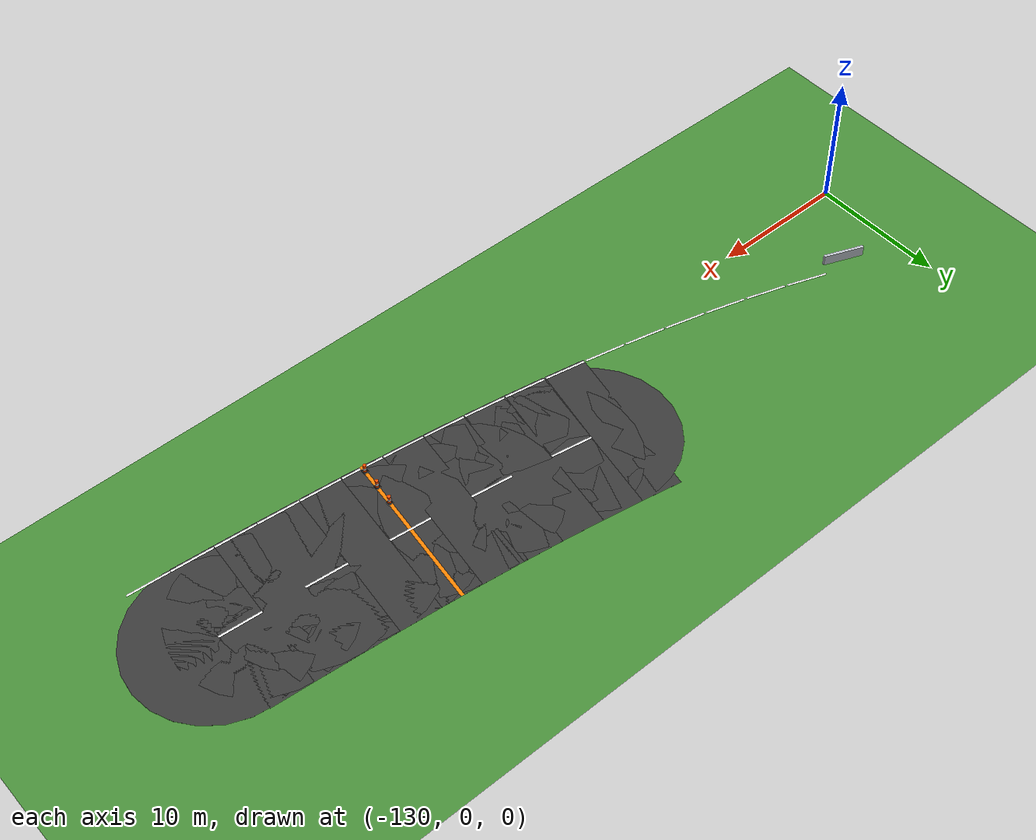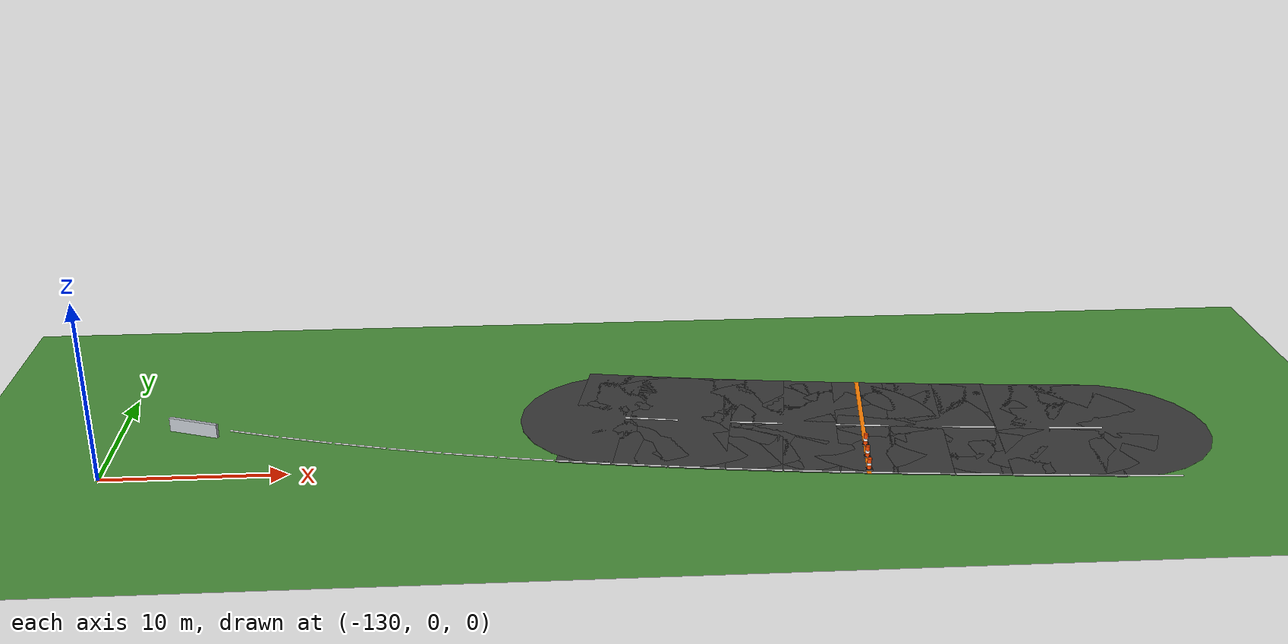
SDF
<sdf version="1.6">
 <world name="sem_silesia_ring_2026">
  <model name="ground_plane">
   <static>true</static>
   <link name="link">
    <collision name="collision">
     <geometry><plane><normal>0 0 1</normal><size>1200 1200</size></plane></geometry>
     <surface><friction><ode><mu>0.6</mu><mu2>0.6</mu2></ode></friction></surface>
    </collision>
    <visual name="visual">
     <geometry><plane><normal>0 0 1</normal><size>1200 1200</size></plane></geometry>
     <material><ambient>0.28 0.55 0.22 1</ambient><diffuse>0.28 0.55 0.22 1</diffuse></material>
    </visual>
   </link>
  </model>
  <model name="arm_outR_398">
   <static>true</static>
   <pose>-125.9399 5.4212 0.4000 0 0 -0.3780</pose>
   <link name="link">
    <visual name="v">
     <geometry><box><size>3.0023 0.2000 0.8000</size></box></geometry>
     <material><ambient>0.75 0.77 0.80 1</ambient><diffuse>0.75 0.77 0.80 1</diffuse></material>
    </visual>
    <collision name="c">
     <geometry><box><size>3.0023 0.2000 0.8000</size></box></geometry>
     <surface><friction><ode><mu>0.8</mu><mu2>0.8</mu2></ode></friction></surface>
    </collision>
   </link>
  </model>
  <model name="wl_R_s399">
   <static>true</static>
   <pose>-122.5764 5.1720 0.0070 0 0 -0.3409</pose>
   <link name="link">
    <visual name="v">
     <geometry><box><size>3.0024 0.1500 0.0080</size></box></geometry>
     <material><ambient>0.95 0.95 0.95 1</ambient><diffuse>0.95 0.95 0.95 1</diffuse></material>
    </visual>
   </link>
  </model>
  <model name="wl_R_s400">
   <static>true</static>
   <pose>-119.5448 4.1534 0.0070 0 0 -0.3074</pose>
   <link name="link">
    <visual name="v">
     <geometry><box><size>3.0024 0.1500 0.0080</size></box></geometry>
     <material><ambient>0.95 0.95 0.95 1</ambient><diffuse>0.95 0.95 0.95 1</diffuse></material>
    </visual>
   </link>
  </model>
  <model name="wl_R_s401">
   <static>true</static>
   <pose>-116.5007 3.2375 0.0070 0 0 -0.2771</pose>
   <link name="link">
    <visual name="v">
     <geometry><box><size>3.0024 0.1500 0.0080</size></box></geometry>
     <material><ambient>0.95 0.95 0.95 1</ambient><diffuse>0.95 0.95 0.95 1</diffuse></material>
    </visual>
   </link>
  </model>
  <model name="wl_R_s402">
   <static>true</static>
   <pose>-113.4487 2.4140 0.0070 0 0 -0.2500</pose>
   <link name="link">
    <visual name="v">
     <geometry><box><size>3.0025 0.1500 0.0080</size></box></geometry>
     <material><ambient>0.95 0.95 0.95 1</ambient><diffuse>0.95 0.95 0.95 1</diffuse></material>
    </visual>
   </link>
  </model>
  <model name="wl_R_s403">
   <static>true</static>
   <pose>-110.3926 1.6732 0.0070 0 0 -0.2256</pose>
   <link name="link">
    <visual name="v">
     <geometry><box><size>3.0025 0.1500 0.0080</size></box></geometry>
     <material><ambient>0.95 0.95 0.95 1</ambient><diffuse>0.95 0.95 0.95 1</diffuse></material>
    </visual>
   </link>
  </model>
  <model name="wl_R_s404">
   <static>true</static>
   <pose>-107.3355 1.0063 0.0070 0 0 -0.2040</pose>
   <link name="link">
    <visual name="v">
     <geometry><box><size>3.0025 0.1500 0.0080</size></box></geometry>
     <material><ambient>0.95 0.95 0.95 1</ambient><diffuse>0.95 0.95 0.95 1</diffuse></material>
    </visual>
   </link>
  </model>
  <model name="road_s405">
   <static>true</static>
   <pose>-103.2047 6.1550 0.0030 0 0 -0.1848</pose>
   <link name="link">
    <visual name="v">
     <geometry><box><size>3.0025 12.0000 0.0060</size></box></geometry>
     <material><ambient>0.22 0.22 0.22 1</ambient><diffuse>0.22 0.22 0.22 1</diffuse></material>
    </visual>
    <collision name="c">
     <geometry><box><size>3.0025 12.0000 0.0060</size></box></geometry>
     <surface><friction><ode><mu>0.9</mu><mu2>0.9</mu2></ode></friction></surface>
    </collision>
   </link>
  </model>
  <model name="wl_R_s405">
   <static>true</static>
   <pose>-104.2797 0.4047 0.0070 0 0 -0.1848</pose>
   <link name="link">
    <visual name="v">
     <geometry><box><size>3.0025 0.1500 0.0080</size></box></geometry>
     <material><ambient>0.95 0.95 0.95 1</ambient><diffuse>0.95 0.95 0.95 1</diffuse></material>
    </visual>
   </link>
  </model>
  <model name="road_s406">
   <static>true</static>
   <pose>-100.2488 5.6289 0.0030 0 0 -0.1675</pose>
   <link name="link">
    <visual name="v">
     <geometry><box><size>3.0025 12.0000 0.0060</size></box></geometry>
     <material><ambient>0.22 0.22 0.22 1</ambient><diffuse>0.22 0.22 0.22 1</diffuse></material>
    </visual>
    <collision name="c">
     <geometry><box><size>3.0025 12.0000 0.0060</size></box></geometry>
     <surface><friction><ode><mu>0.9</mu><mu2>0.9</mu2></ode></friction></surface>
    </collision>
   </link>
  </model>
  <model name="road_jnt406">
   <static>true</static>
   <pose>-101.7290 5.8792 0.0030 0 0 0</pose>
   <link name="link">
    <visual name="v">
     <geometry><cylinder><radius>6.0000</radius><length>0.0060</length></cylinder></geometry>
     <material><ambient>0.22 0.22 0.22 1</ambient><diffuse>0.22 0.22 0.22 1</diffuse></material>
    </visual>
    <collision name="c">
     <geometry><cylinder><radius>6.0000</radius><length>0.0060</length></cylinder></geometry>
     <surface><friction><ode><mu>0.9</mu><mu2>0.9</mu2></ode></friction></surface>
    </collision>
   </link>
  </model>
  <model name="wl_R_s406">
   <static>true</static>
   <pose>-101.2239 -0.1392 0.0070 0 0 -0.1675</pose>
   <link name="link">
    <visual name="v">
     <geometry><box><size>3.0025 0.1500 0.0080</size></box></geometry>
     <material><ambient>0.95 0.95 0.95 1</ambient><diffuse>0.95 0.95 0.95 1</diffuse></material>
    </visual>
   </link>
  </model>
  <model name="cd_s406">
   <static>true</static>
   <pose>-100.2488 5.6289 0.0070 0 0 -0.1675</pose>
   <link name="link">
    <visual name="v">
     <geometry><box><size>3.0025 0.1500 0.0080</size></box></geometry>
     <material><ambient>0.95 0.95 0.95 1</ambient><diffuse>0.95 0.95 0.95 1</diffuse></material>
    </visual>
   </link>
  </model>
  <model name="road_s407">
   <static>true</static>
   <pose>-97.2845 5.1521 0.0030 0 0 -0.1515</pose>
   <link name="link">
    <visual name="v">
     <geometry><box><size>3.0025 12.0000 0.0060</size></box></geometry>
     <material><ambient>0.22 0.22 0.22 1</ambient><diffuse>0.22 0.22 0.22 1</diffuse></material>
    </visual>
    <collision name="c">
     <geometry><box><size>3.0025 12.0000 0.0060</size></box></geometry>
     <surface><friction><ode><mu>0.9</mu><mu2>0.9</mu2></ode></friction></surface>
    </collision>
   </link>
  </model>
  <model name="road_jnt407">
   <static>true</static>
   <pose>-98.7685 5.3787 0.0030 0 0 0</pose>
   <link name="link">
    <visual name="v">
     <geometry><cylinder><radius>6.0000</radius><length>0.0060</length></cylinder></geometry>
     <material><ambient>0.22 0.22 0.22 1</ambient><diffuse>0.22 0.22 0.22 1</diffuse></material>
    </visual>
    <collision name="c">
     <geometry><cylinder><radius>6.0000</radius><length>0.0060</length></cylinder></geometry>
     <surface><friction><ode><mu>0.9</mu><mu2>0.9</mu2></ode></friction></surface>
    </collision>
   </link>
  </model>
  <model name="wl_R_s407">
   <static>true</static>
   <pose>-98.1673 -0.6309 0.0070 0 0 -0.1515</pose>
   <link name="link">
    <visual name="v">
     <geometry><box><size>3.0025 0.1500 0.0080</size></box></geometry>
     <material><ambient>0.95 0.95 0.95 1</ambient><diffuse>0.95 0.95 0.95 1</diffuse></material>
    </visual>
   </link>
  </model>
  <model name="road_s408">
   <static>true</static>
   <pose>-94.3132 4.7207 0.0030 0 0 -0.1369</pose>
   <link name="link">
    <visual name="v">
     <geometry><box><size>3.0025 12.0000 0.0060</size></box></geometry>
     <material><ambient>0.22 0.22 0.22 1</ambient><diffuse>0.22 0.22 0.22 1</diffuse></material>
    </visual>
    <collision name="c">
     <geometry><box><size>3.0025 12.0000 0.0060</size></box></geometry>
     <surface><friction><ode><mu>0.9</mu><mu2>0.9</mu2></ode></friction></surface>
    </collision>
   </link>
  </model>
  <model name="road_jnt408">
   <static>true</static>
   <pose>-95.8004 4.9256 0.0030 0 0 0</pose>
   <link name="link">
    <visual name="v">
     <geometry><cylinder><radius>6.0000</radius><length>0.0060</length></cylinder></geometry>
     <material><ambient>0.22 0.22 0.22 1</ambient><diffuse>0.22 0.22 0.22 1</diffuse></material>
    </visual>
    <collision name="c">
     <geometry><cylinder><radius>6.0000</radius><length>0.0060</length></cylinder></geometry>
     <surface><friction><ode><mu>0.9</mu><mu2>0.9</mu2></ode></friction></surface>
    </collision>
   </link>
  </model>
  <model name="wl_R_s408">
   <static>true</static>
   <pose>-95.1114 -1.0746 0.0070 0 0 -0.1369</pose>
   <link name="link">
    <visual name="v">
     <geometry><box><size>3.0025 0.1500 0.0080</size></box></geometry>
     <material><ambient>0.95 0.95 0.95 1</ambient><diffuse>0.95 0.95 0.95 1</diffuse></material>
    </visual>
   </link>
  </model>
  <model name="cd_s408">
   <static>true</static>
   <pose>-94.3132 4.7207 0.0070 0 0 -0.1369</pose>
   <link name="link">
    <visual name="v">
     <geometry><box><size>3.0025 0.1500 0.0080</size></box></geometry>
     <material><ambient>0.95 0.95 0.95 1</ambient><diffuse>0.95 0.95 0.95 1</diffuse></material>
    </visual>
   </link>
  </model>
  <model name="road_s409">
   <static>true</static>
   <pose>-91.3362 4.3306 0.0030 0 0 -0.1237</pose>
   <link name="link">
    <visual name="v">
     <geometry><box><size>3.0025 12.0000 0.0060</size></box></geometry>
     <material><ambient>0.22 0.22 0.22 1</ambient><diffuse>0.22 0.22 0.22 1</diffuse></material>
    </visual>
    <collision name="c">
     <geometry><box><size>3.0025 12.0000 0.0060</size></box></geometry>
     <surface><friction><ode><mu>0.9</mu><mu2>0.9</mu2></ode></friction></surface>
    </collision>
   </link>
  </model>
  <model name="road_jnt409">
   <static>true</static>
   <pose>-92.8260 4.5159 0.0030 0 0 0</pose>
   <link name="link">
    <visual name="v">
     <geometry><cylinder><radius>6.0000</radius><length>0.0060</length></cylinder></geometry>
     <material><ambient>0.22 0.22 0.22 1</ambient><diffuse>0.22 0.22 0.22 1</diffuse></material>
    </visual>
    <collision name="c">
     <geometry><cylinder><radius>6.0000</radius><length>0.0060</length></cylinder></geometry>
     <surface><friction><ode><mu>0.9</mu><mu2>0.9</mu2></ode></friction></surface>
    </collision>
   </link>
  </model>
  <model name="wl_R_s409">
   <static>true</static>
   <pose>-92.0580 -1.4747 0.0070 0 0 -0.1237</pose>
   <link name="link">
    <visual name="v">
     <geometry><box><size>3.0025 0.1500 0.0080</size></box></geometry>
     <material><ambient>0.95 0.95 0.95 1</ambient><diffuse>0.95 0.95 0.95 1</diffuse></material>
    </visual>
   </link>
  </model>
  <model name="road_s410">
   <static>true</static>
   <pose>-88.3545 3.9776 0.0030 0 0 -0.1120</pose>
   <link name="link">
    <visual name="v">
     <geometry><box><size>3.0025 12.0000 0.0060</size></box></geometry>
     <material><ambient>0.22 0.22 0.22 1</ambient><diffuse>0.22 0.22 0.22 1</diffuse></material>
    </visual>
    <collision name="c">
     <geometry><box><size>3.0025 12.0000 0.0060</size></box></geometry>
     <surface><friction><ode><mu>0.9</mu><mu2>0.9</mu2></ode></friction></surface>
    </collision>
   </link>
  </model>
  <model name="road_jnt410">
   <static>true</static>
   <pose>-89.8464 4.1454 0.0030 0 0 0</pose>
   <link name="link">
    <visual name="v">
     <geometry><cylinder><radius>6.0000</radius><length>0.0060</length></cylinder></geometry>
     <material><ambient>0.22 0.22 0.22 1</ambient><diffuse>0.22 0.22 0.22 1</diffuse></material>
    </visual>
    <collision name="c">
     <geometry><cylinder><radius>6.0000</radius><length>0.0060</length></cylinder></geometry>
     <surface><friction><ode><mu>0.9</mu><mu2>0.9</mu2></ode></friction></surface>
    </collision>
   </link>
  </model>
  <model name="wl_R_s410">
   <static>true</static>
   <pose>-89.0086 -1.8358 0.0070 0 0 -0.1120</pose>
   <link name="link">
    <visual name="v">
     <geometry><box><size>3.0025 0.1500 0.0080</size></box></geometry>
     <material><ambient>0.95 0.95 0.95 1</ambient><diffuse>0.95 0.95 0.95 1</diffuse></material>
    </visual>
   </link>
  </model>
  <model name="cd_s410">
   <static>true</static>
   <pose>-88.3545 3.9776 0.0070 0 0 -0.1120</pose>
   <link name="link">
    <visual name="v">
     <geometry><box><size>3.0025 0.1500 0.0080</size></box></geometry>
     <material><ambient>0.95 0.95 0.95 1</ambient><diffuse>0.95 0.95 0.95 1</diffuse></material>
    </visual>
   </link>
  </model>
  <model name="road_s411">
   <static>true</static>
   <pose>-85.3692 3.6570 0.0030 0 0 -0.1019</pose>
   <link name="link">
    <visual name="v">
     <geometry><box><size>3.0025 12.0000 0.0060</size></box></geometry>
     <material><ambient>0.22 0.22 0.22 1</ambient><diffuse>0.22 0.22 0.22 1</diffuse></material>
    </visual>
    <collision name="c">
     <geometry><box><size>3.0025 12.0000 0.0060</size></box></geometry>
     <surface><friction><ode><mu>0.9</mu><mu2>0.9</mu2></ode></friction></surface>
    </collision>
   </link>
  </model>
  <model name="road_jnt411">
   <static>true</static>
   <pose>-86.8627 3.8097 0.0030 0 0 0</pose>
   <link name="link">
    <visual name="v">
     <geometry><cylinder><radius>6.0000</radius><length>0.0060</length></cylinder></geometry>
     <material><ambient>0.22 0.22 0.22 1</ambient><diffuse>0.22 0.22 0.22 1</diffuse></material>
    </visual>
    <collision name="c">
     <geometry><cylinder><radius>6.0000</radius><length>0.0060</length></cylinder></geometry>
     <surface><friction><ode><mu>0.9</mu><mu2>0.9</mu2></ode></friction></surface>
    </collision>
   </link>
  </model>
  <model name="wl_R_s411">
   <static>true</static>
   <pose>-85.9642 -2.1626 0.0070 0 0 -0.1019</pose>
   <link name="link">
    <visual name="v">
     <geometry><box><size>3.0025 0.1500 0.0080</size></box></geometry>
     <material><ambient>0.95 0.95 0.95 1</ambient><diffuse>0.95 0.95 0.95 1</diffuse></material>
    </visual>
   </link>
  </model>
  <model name="road_s412">
   <static>true</static>
   <pose>-82.3810 3.3645 0.0030 0 0 -0.0933</pose>
   <link name="link">
    <visual name="v">
     <geometry><box><size>3.0025 12.0000 0.0060</size></box></geometry>
     <material><ambient>0.22 0.22 0.22 1</ambient><diffuse>0.22 0.22 0.22 1</diffuse></material>
    </visual>
    <collision name="c">
     <geometry><box><size>3.0025 12.0000 0.0060</size></box></geometry>
     <surface><friction><ode><mu>0.9</mu><mu2>0.9</mu2></ode></friction></surface>
    </collision>
   </link>
  </model>
  <model name="road_jnt412">
   <static>true</static>
   <pose>-83.8757 3.5043 0.0030 0 0 0</pose>
   <link name="link">
    <visual name="v">
     <geometry><cylinder><radius>6.0000</radius><length>0.0060</length></cylinder></geometry>
     <material><ambient>0.22 0.22 0.22 1</ambient><diffuse>0.22 0.22 0.22 1</diffuse></material>
    </visual>
    <collision name="c">
     <geometry><cylinder><radius>6.0000</radius><length>0.0060</length></cylinder></geometry>
     <surface><friction><ode><mu>0.9</mu><mu2>0.9</mu2></ode></friction></surface>
    </collision>
   </link>
  </model>
  <model name="wl_R_s412">
   <static>true</static>
   <pose>-82.9259 -2.4601 0.0070 0 0 -0.0933</pose>
   <link name="link">
    <visual name="v">
     <geometry><box><size>3.0025 0.1500 0.0080</size></box></geometry>
     <material><ambient>0.95 0.95 0.95 1</ambient><diffuse>0.95 0.95 0.95 1</diffuse></material>
    </visual>
   </link>
  </model>
  <model name="cd_s412">
   <static>true</static>
   <pose>-82.3810 3.3645 0.0070 0 0 -0.0933</pose>
   <link name="link">
    <visual name="v">
     <geometry><box><size>3.0025 0.1500 0.0080</size></box></geometry>
     <material><ambient>0.95 0.95 0.95 1</ambient><diffuse>0.95 0.95 0.95 1</diffuse></material>
    </visual>
   </link>
  </model>
  <model name="road_s413">
   <static>true</static>
   <pose>-79.3906 3.0953 0.0030 0 0 -0.0863</pose>
   <link name="link">
    <visual name="v">
     <geometry><box><size>3.0025 12.0000 0.0060</size></box></geometry>
     <material><ambient>0.22 0.22 0.22 1</ambient><diffuse>0.22 0.22 0.22 1</diffuse></material>
    </visual>
    <collision name="c">
     <geometry><box><size>3.0025 12.0000 0.0060</size></box></geometry>
     <surface><friction><ode><mu>0.9</mu><mu2>0.9</mu2></ode></friction></surface>
    </collision>
   </link>
  </model>
  <model name="road_jnt413">
   <static>true</static>
   <pose>-80.8863 3.2247 0.0030 0 0 0</pose>
   <link name="link">
    <visual name="v">
     <geometry><cylinder><radius>6.0000</radius><length>0.0060</length></cylinder></geometry>
     <material><ambient>0.22 0.22 0.22 1</ambient><diffuse>0.22 0.22 0.22 1</diffuse></material>
    </visual>
    <collision name="c">
     <geometry><cylinder><radius>6.0000</radius><length>0.0060</length></cylinder></geometry>
     <surface><friction><ode><mu>0.9</mu><mu2>0.9</mu2></ode></friction></surface>
    </collision>
   </link>
  </model>
  <model name="wl_R_s413">
   <static>true</static>
   <pose>-79.8947 -2.7330 0.0070 0 0 -0.0863</pose>
   <link name="link">
    <visual name="v">
     <geometry><box><size>3.0025 0.1500 0.0080</size></box></geometry>
     <material><ambient>0.95 0.95 0.95 1</ambient><diffuse>0.95 0.95 0.95 1</diffuse></material>
    </visual>
   </link>
  </model>
  <model name="road_s414">
   <static>true</static>
   <pose>-76.3985 2.8447 0.0030 0 0 -0.0809</pose>
   <link name="link">
    <visual name="v">
     <geometry><box><size>3.0025 12.0000 0.0060</size></box></geometry>
     <material><ambient>0.22 0.22 0.22 1</ambient><diffuse>0.22 0.22 0.22 1</diffuse></material>
    </visual>
    <collision name="c">
     <geometry><box><size>3.0025 12.0000 0.0060</size></box></geometry>
     <surface><friction><ode><mu>0.9</mu><mu2>0.9</mu2></ode></friction></surface>
    </collision>
   </link>
  </model>
  <model name="road_jnt414">
   <static>true</static>
   <pose>-77.8949 2.9659 0.0030 0 0 0</pose>
   <link name="link">
    <visual name="v">
     <geometry><cylinder><radius>6.0000</radius><length>0.0060</length></cylinder></geometry>
     <material><ambient>0.22 0.22 0.22 1</ambient><diffuse>0.22 0.22 0.22 1</diffuse></material>
    </visual>
    <collision name="c">
     <geometry><cylinder><radius>6.0000</radius><length>0.0060</length></cylinder></geometry>
     <surface><friction><ode><mu>0.9</mu><mu2>0.9</mu2></ode></friction></surface>
    </collision>
   </link>
  </model>
  <model name="wl_R_s414">
   <static>true</static>
   <pose>-76.8711 -2.9862 0.0070 0 0 -0.0809</pose>
   <link name="link">
    <visual name="v">
     <geometry><box><size>3.0025 0.1500 0.0080</size></box></geometry>
     <material><ambient>0.95 0.95 0.95 1</ambient><diffuse>0.95 0.95 0.95 1</diffuse></material>
    </visual>
   </link>
  </model>
  <model name="cd_s414">
   <static>true</static>
   <pose>-76.3985 2.8447 0.0070 0 0 -0.0809</pose>
   <link name="link">
    <visual name="v">
     <geometry><box><size>3.0025 0.1500 0.0080</size></box></geometry>
     <material><ambient>0.95 0.95 0.95 1</ambient><diffuse>0.95 0.95 0.95 1</diffuse></material>
    </visual>
   </link>
  </model>
  <model name="road_jnt415">
   <static>true</static>
   <pose>-74.9022 2.7234 0.0030 0 0 0</pose>
   <link name="link">
    <visual name="v">
     <geometry><cylinder><radius>6.0000</radius><length>0.0060</length></cylinder></geometry>
     <material><ambient>0.22 0.22 0.22 1</ambient><diffuse>0.22 0.22 0.22 1</diffuse></material>
    </visual>
    <collision name="c">
     <geometry><cylinder><radius>6.0000</radius><length>0.0060</length></cylinder></geometry>
     <surface><friction><ode><mu>0.9</mu><mu2>0.9</mu2></ode></friction></surface>
    </collision>
   </link>
  </model>
  <model name="wl_R_s415">
   <static>true</static>
   <pose>-73.8557 -3.2248 0.0070 0 0 -0.0771</pose>
   <link name="link">
    <visual name="v">
     <geometry><box><size>3.0025 0.1500 0.0080</size></box></geometry>
     <material><ambient>0.95 0.95 0.95 1</ambient><diffuse>0.95 0.95 0.95 1</diffuse></material>
    </visual>
   </link>
  </model>
  <model name="stop_line">
   <static>true</static>
   <pose>-88.3545 3.9776 0.0070 0 0 -0.1120</pose>
   <link name="link">
    <visual name="v">
     <geometry><box><size>0.2500 12.0000 0.0080</size></box></geometry>
     <material><ambient>1 0.50 0.0 1</ambient><diffuse>1 0.50 0.0 1</diffuse></material>
    </visual>
   </link>
  </model>
  <model name="stop_cone_1">
   <static>true</static>
   <pose>-88.9694 -1.4880 0 0 0 0</pose>
   <link name="link">
    <visual name="base">
     <pose>0 0 0.03 0 0 0</pose>
     <geometry><box><size>0.35 0.35 0.06</size></box></geometry>
     <material><ambient>0.1 0.1 0.1 1</ambient><diffuse>0.1 0.1 0.1 1</diffuse></material>
    </visual>
    <visual name="body">
     <pose>0 0 0.35 0 0 0</pose>
     <geometry><cylinder><radius>0.12</radius><length>0.65</length></cylinder></geometry>
     <material><ambient>1 0.3 0 1</ambient><diffuse>1 0.3 0 1</diffuse></material>
    </visual>
    <visual name="stripe">
     <pose>0 0 0.35 0 0 0</pose>
     <geometry><cylinder><radius>0.125</radius><length>0.15</length></cylinder></geometry>
     <material><ambient>1 1 1 1</ambient><diffuse>1 1 1 1</diffuse></material>
    </visual>
    <collision name="c">
     <pose>0 0 0.35 0 0 0</pose>
     <geometry><cylinder><radius>0.15</radius><length>0.70</length></cylinder></geometry>
    </collision>
   </link>
  </model>
  <model name="stop_cone_2">
   <static>true</static>
   <pose>-88.8017 0.0026 0 0 0 0</pose>
   <link name="link">
    <visual name="base">
     <pose>0 0 0.03 0 0 0</pose>
     <geometry><box><size>0.35 0.35 0.06</size></box></geometry>
     <material><ambient>0.1 0.1 0.1 1</ambient><diffuse>0.1 0.1 0.1 1</diffuse></material>
    </visual>
    <visual name="body">
     <pose>0 0 0.35 0 0 0</pose>
     <geometry><cylinder><radius>0.12</radius><length>0.65</length></cylinder></geometry>
     <material><ambient>1 0.3 0 1</ambient><diffuse>1 0.3 0 1</diffuse></material>
    </visual>
    <visual name="stripe">
     <pose>0 0 0.35 0 0 0</pose>
     <geometry><cylinder><radius>0.125</radius><length>0.15</length></cylinder></geometry>
     <material><ambient>1 1 1 1</ambient><diffuse>1 1 1 1</diffuse></material>
    </visual>
    <collision name="c">
     <pose>0 0 0.35 0 0 0</pose>
     <geometry><cylinder><radius>0.15</radius><length>0.70</length></cylinder></geometry>
    </collision>
   </link>
  </model>
  <model name="stop_cone_3">
   <static>true</static>
   <pose>-88.6340 1.4932 0 0 0 0</pose>
   <link name="link">
    <visual name="base">
     <pose>0 0 0.03 0 0 0</pose>
     <geometry><box><size>0.35 0.35 0.06</size></box></geometry>
     <material><ambient>0.1 0.1 0.1 1</ambient><diffuse>0.1 0.1 0.1 1</diffuse></material>
    </visual>
    <visual name="body">
     <pose>0 0 0.35 0 0 0</pose>
     <geometry><cylinder><radius>0.12</radius><length>0.65</length></cylinder></geometry>
     <material><ambient>1 0.3 0 1</ambient><diffuse>1 0.3 0 1</diffuse></material>
    </visual>
    <visual name="stripe">
     <pose>0 0 0.35 0 0 0</pose>
     <geometry><cylinder><radius>0.125</radius><length>0.15</length></cylinder></geometry>
     <material><ambient>1 1 1 1</ambient><diffuse>1 1 1 1</diffuse></material>
    </visual>
    <collision name="c">
     <pose>0 0 0.35 0 0 0</pose>
     <geometry><cylinder><radius>0.15</radius><length>0.70</length></cylinder></geometry>
    </collision>
   </link>
  </model>
 </world>
</sdf>
